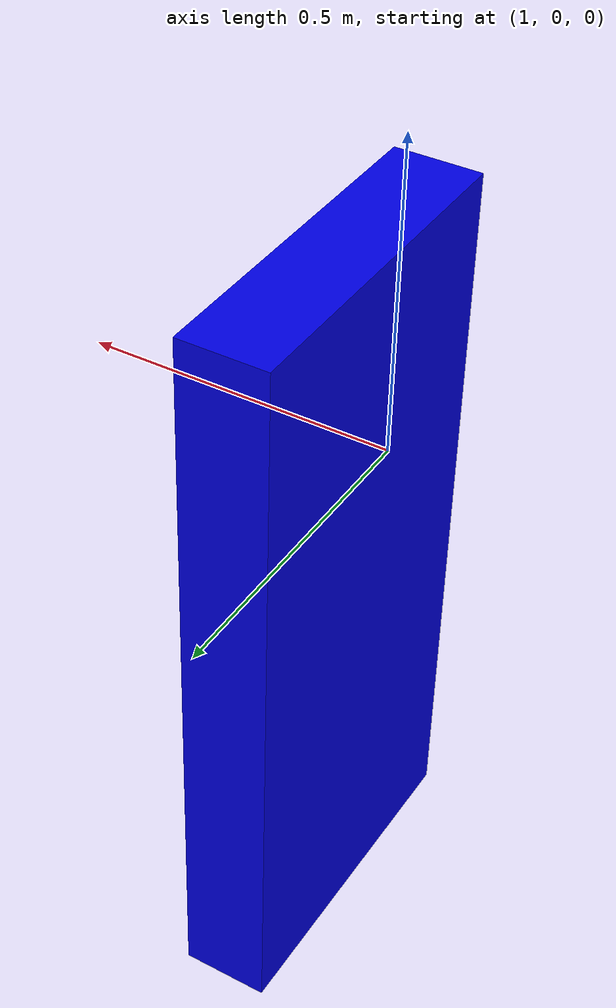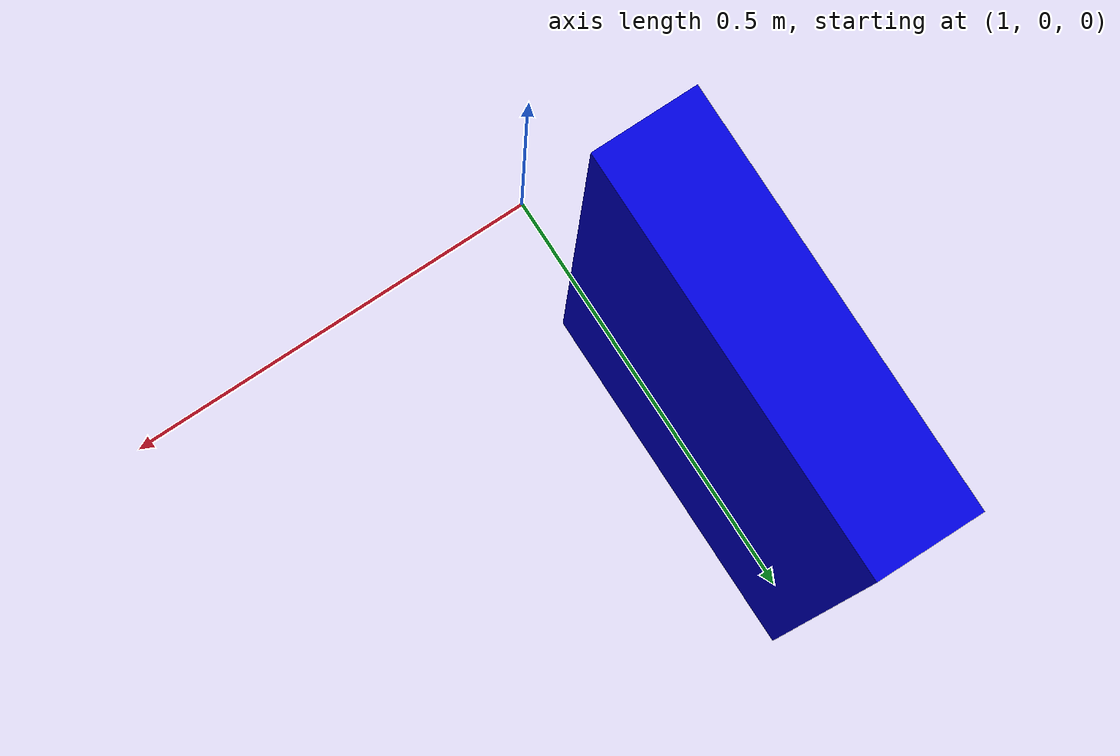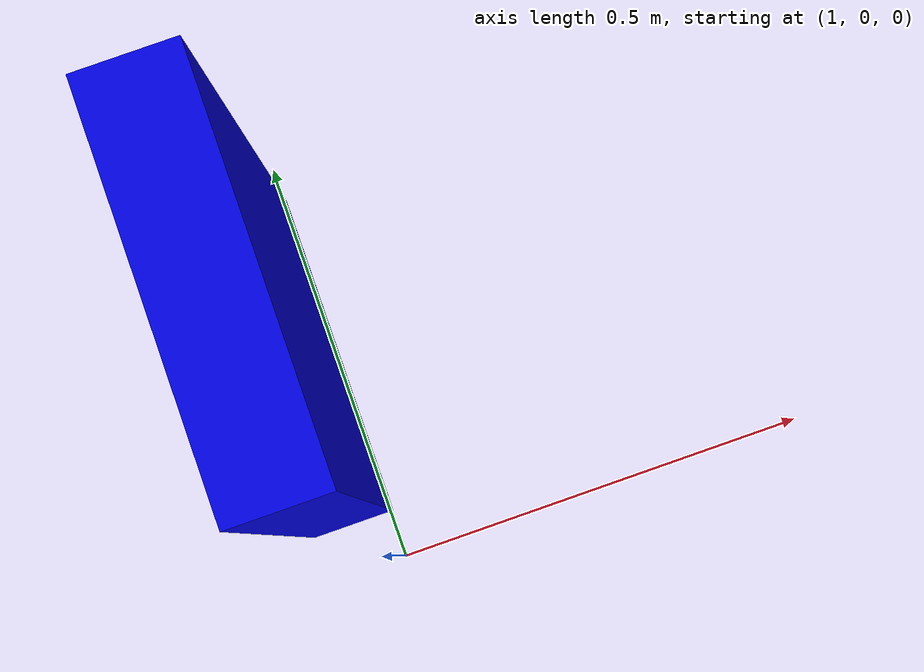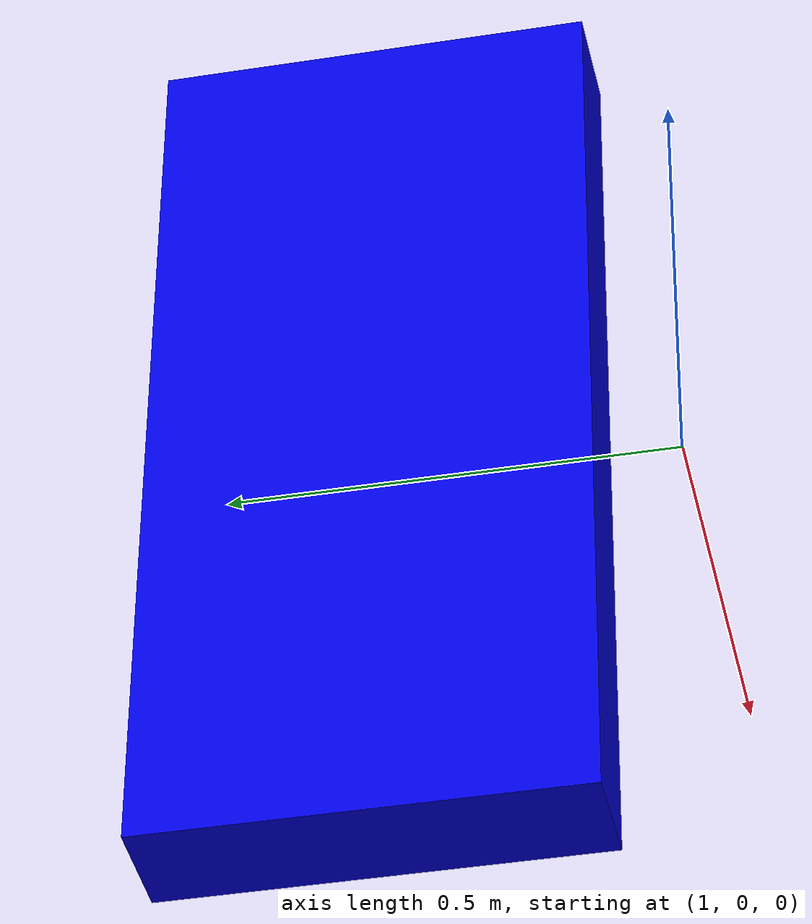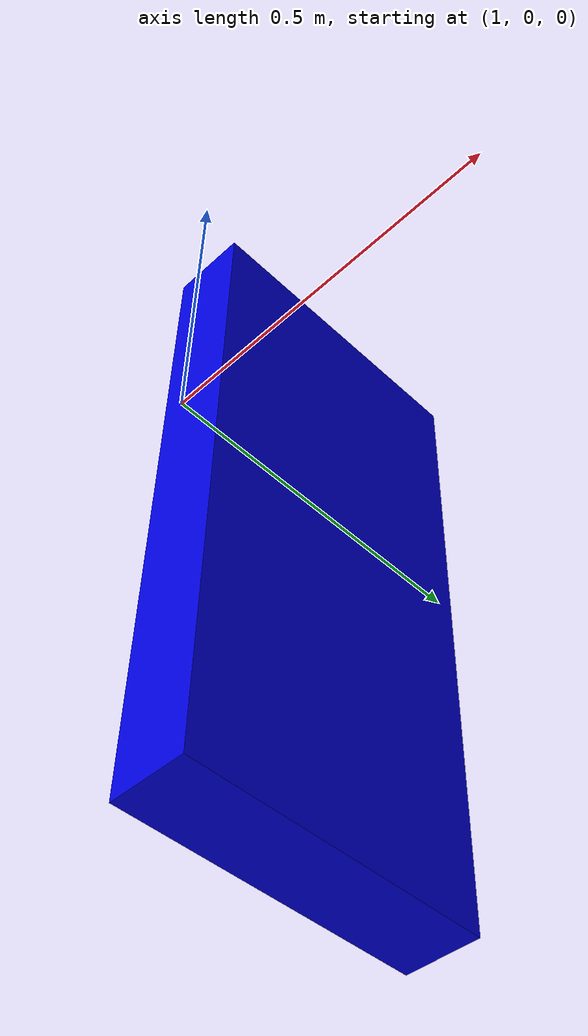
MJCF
<mujoco>
	<size nuserdata="6"/>
	<compiler angle="degree" balanceinertia="true"/>
	<!-- radian表示xml中euler的角度变化  radian是角度变化 -->
	<option timestep="0.004" integrator="RK4" cone = "pyramidal" gravity = "0 0 0">
		<flag sensornoise="disable" energy="disable" contact="disable" />
	</option>
	<worldbody>
        <light diffuse=".5 .5 .5" pos="0 0 3" dir="0 0 -1"/>
		<body pos="0.92 0.315 0" euler="0 0 0">
				<joint name="pin1" type="hinge"  axis = "0 0 1" pos="0 -0.24 0.2" damping = "50" />
				<geom type="box" size=".06 0.24 .52" rgba="0 0 .9 1" mass="33.04" />
				<inertial pos="0 -0.24 0" mass="33.04" diaginertia="0 0 1.84"/>
		</body>
	</worldbody>
</mujoco>
